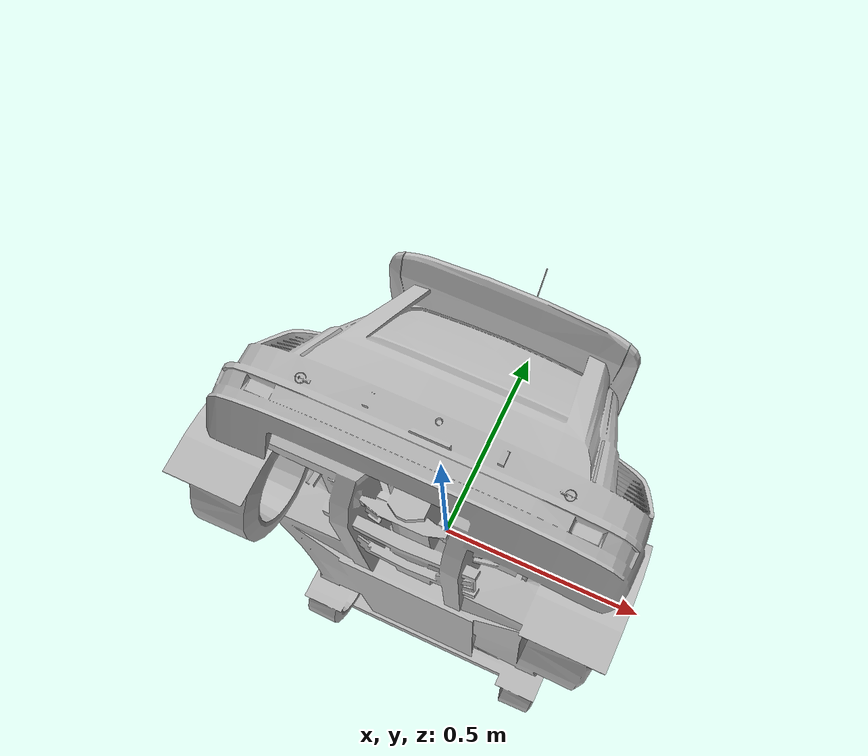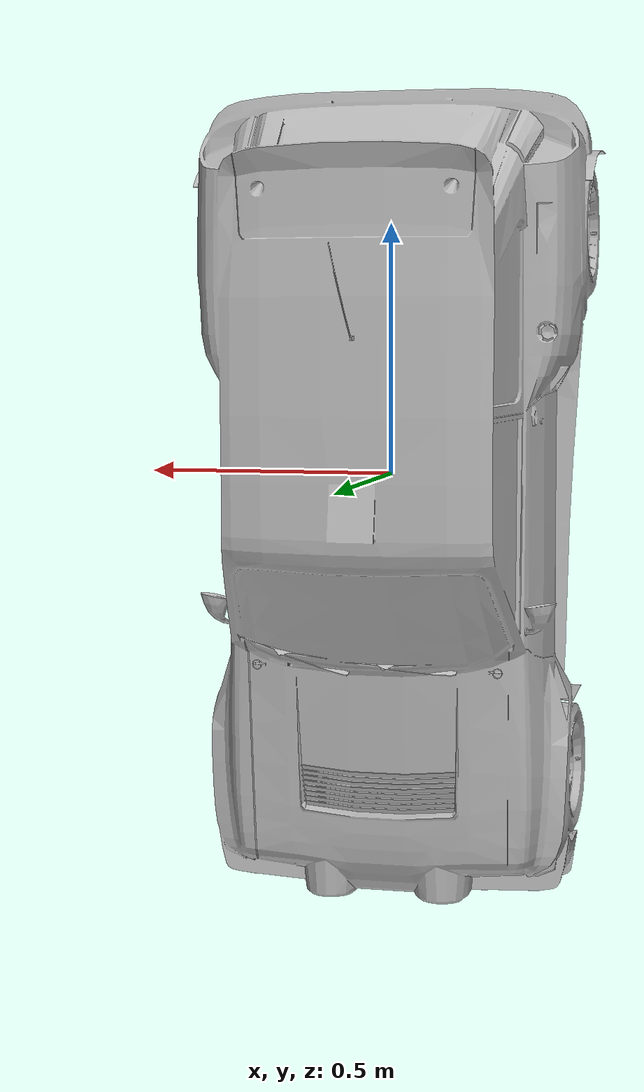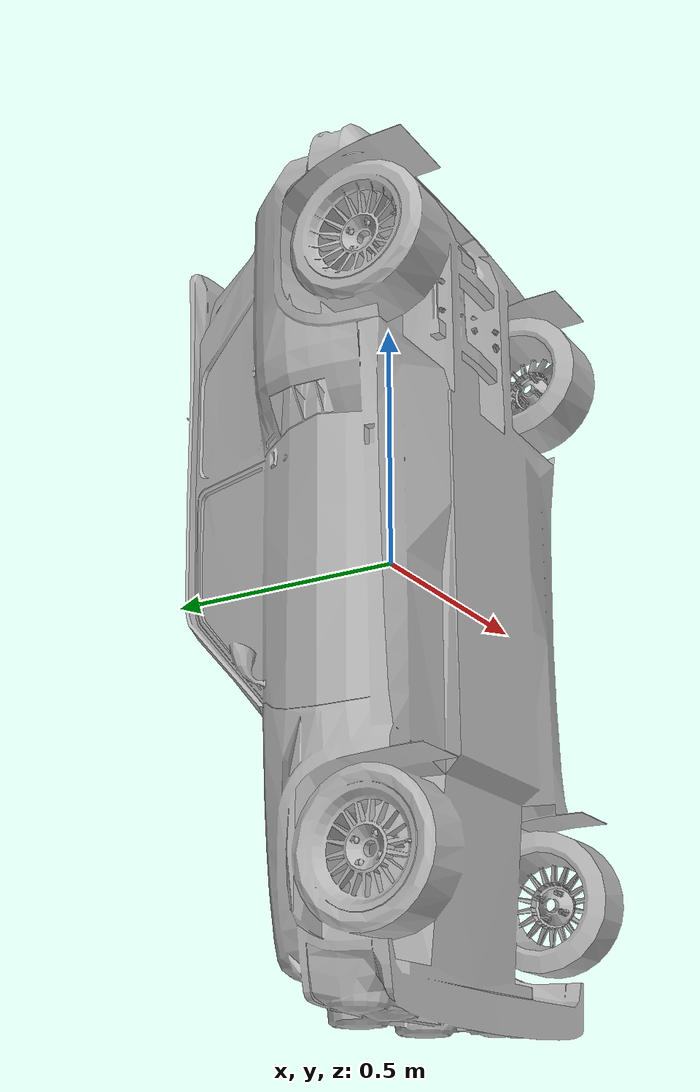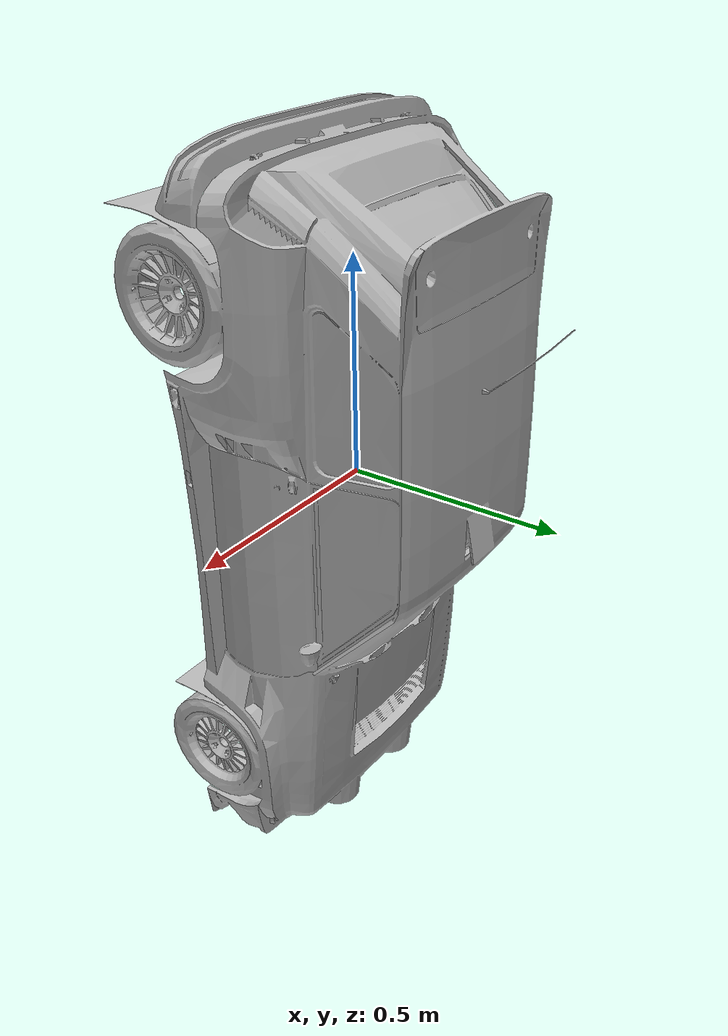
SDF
<?xml version="1.0" ?>
<sdf version="1.6">
  <model name="car0">
    <static>false</static>
    <link name="link">
      <visual name="visual">
        <geometry>
          <mesh>
            <scale>2 2 2</scale>
            <uri>model://car/car0/models/model_normalized.obj</uri>
          </mesh>
        </geometry>
      </visual>
      <collision name="collision">
        <geometry>
          <mesh>
            <scale>2 2 2</scale>
            <uri>model://car/car0/models/model_normalized.obj</uri>
          </mesh>
        </geometry>
      </collision>
    </link>
    <plugin filename="ignition-gazebo-label-system" name="ignition::gazebo::systems::Label">
        <label>30</label>
    </plugin>
  </model>
</sdf>
